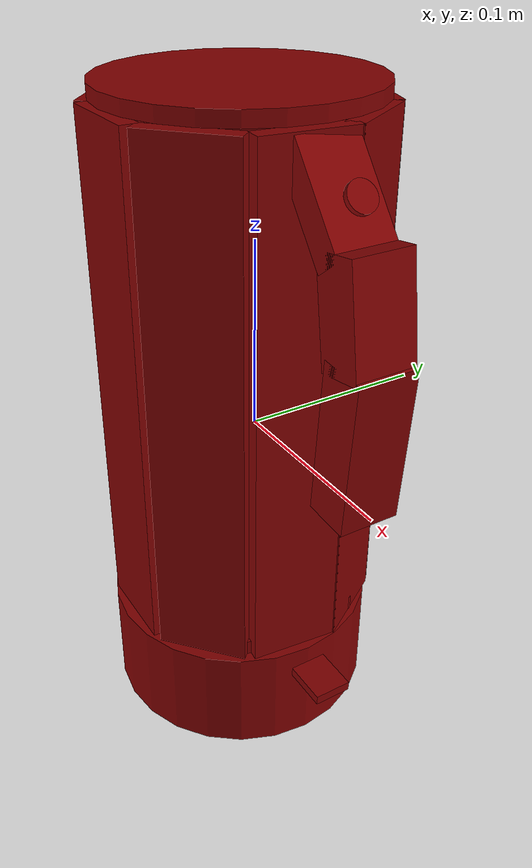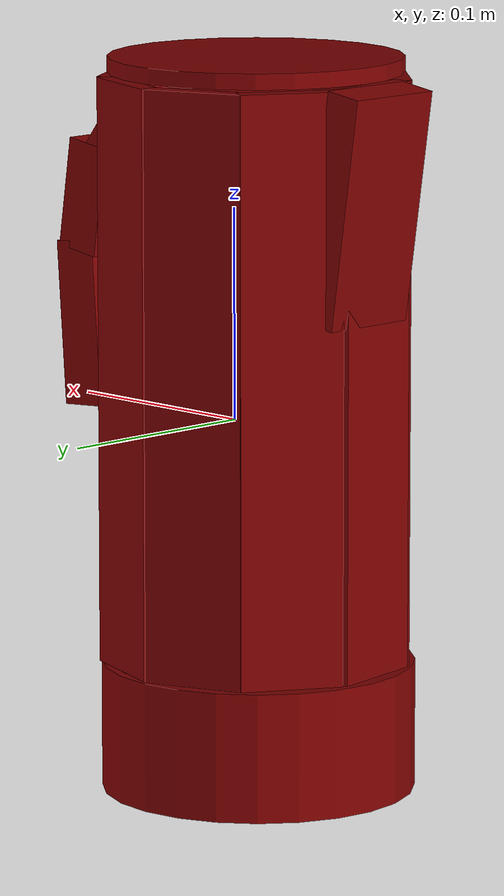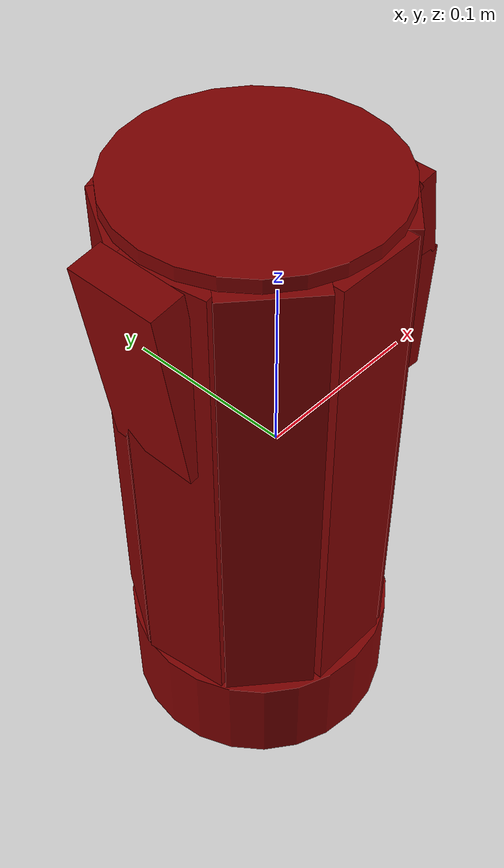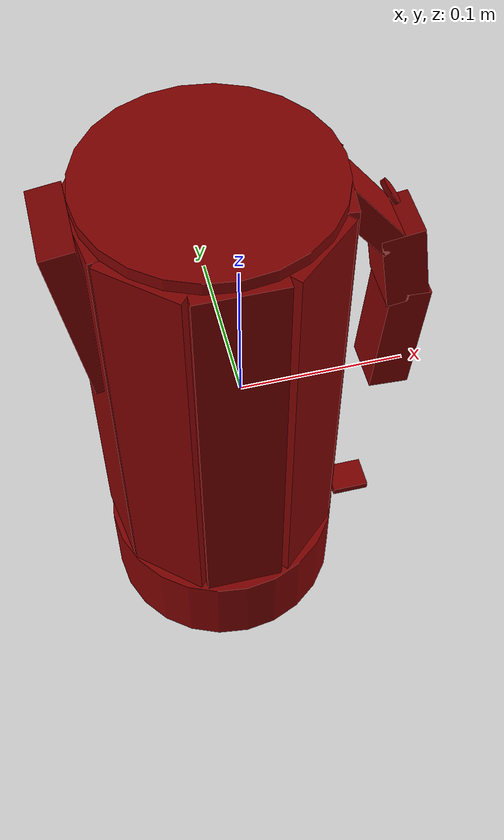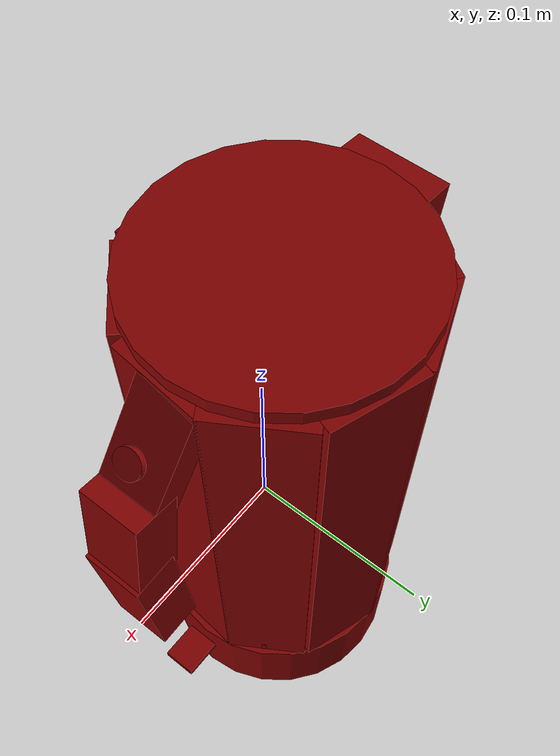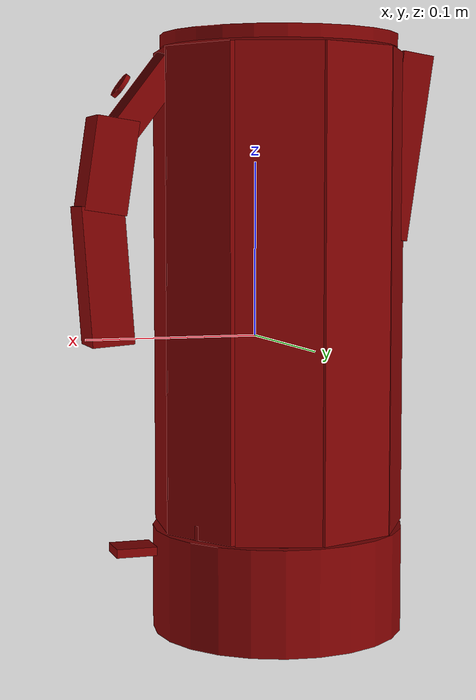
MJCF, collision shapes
<?xml version='1.0' encoding='UTF-8'?>
<mujoco model="model">
  <compiler angle="radian"/>
  <asset>
    <mesh file="visuals/Body001.obj" name="Body001_vis"/>
    <mesh file="visuals/Button001.obj" name="Button001_vis"/>
    <mesh file="visuals/Handle001.obj" name="Handle001_vis"/>
    <mesh file="visuals/Lever001.obj" name="Lever001_vis"/>
    <mesh file="visuals/Lid001.obj" name="Lid001_vis"/>
    <texture file="visuals/T_BC001.png" name="Body001_material" type="2d"/>
    <material name="Body001_material" rgba="1 1 1 1.0" texture="Body001_material" shininess="0.5" specular="0.3103448502657381"/>
    <texture file="visuals/T_BC001.png" name="Handle001_material" type="2d"/>
    <material name="Handle001_material" rgba="1 1 1 1.0" texture="Handle001_material" shininess="0.5" specular="0.3103448502657381"/>
    <texture file="visuals/T_BC001.png" name="Button001_material" type="2d"/>
    <material name="Button001_material" rgba="1 1 1 1.0" texture="Button001_material" shininess="0.5" specular="0.3103448502657381"/>
    <texture file="visuals/T_BC001.png" name="Lid001_material" type="2d"/>
    <material name="Lid001_material" rgba="1 1 1 1.0" texture="Lid001_material" shininess="0.5" specular="0.3103448502657381"/>
    <texture file="visuals/T_BC001.png" name="Lever001_material" type="2d"/>
    <material name="Lever001_material" rgba="1 1 1 1.0" texture="Lever001_material" shininess="0.5" specular="0.3103448502657381"/>
  </asset>
  <default>
    <default class="visual">
      <geom conaffinity="0" contype="0" group="1" type="mesh"/>
    </default>
    <default class="collision">
      <geom group="0" rgba="0.5 0 0 0.5"/>
    </default>
    <default class="spawn">
      <geom group="0" rgba="1 1 1 0.5" contype="0" conaffinity="0"/>
      <site group="0" rgba="1 1 1 0.5"/>
    </default>
    <default class="region">
      <geom group="1" conaffinity="0" contype="0" rgba="0 1 0 0"/>
    </default>
  </default>
  <worldbody>
    <body>
      <body name="object">
        <geom mesh="Body001_vis" type="mesh" solimp="0.998 0.998 0.001" solref="0.001 1" density="100" friction="0.95 0.3 0.1" class="visual" material="Body001_material"/>
        <geom class="collision" type="cylinder" pos="-0.014147056266665459 -0.0014596912078559399 -0.1420055478811264" size="0.07333151251077652 0.030249718576669693" quat="1.0 0.0 0.0 0.0"/>
        <body name="Handle001">
          <joint axis="0.0 0.0 1.0" pos="1.1175870895385742e-08 0.0030100685544312 0.0263005793094635" limited="true" name="Handle001_joint" range="0.0 0.1" type="slide" damping="1" frictionloss="1" armature=".01" stiffness="0.05"/>
          <geom mesh="Handle001_vis" type="mesh" solimp="0.998 0.998 0.001" solref="0.001 1" density="100" friction="0.95 0.3 0.1" class="visual" material="Handle001_material"/>
          <geom class="collision" type="box" pos="-0.014659987762570381 -0.0649634450674057 0.02637583017349243" size="0.023964185267686844 0.004526099190115929 0.13681364059448242" quat="7.549790126404332e-08 0.0 0.0 1.0"/>
          <geom class="collision" type="box" pos="-0.05734682083129883 -0.048654280602931976 0.02637583017349243" size="0.023964185267686844 0.004526099190115929 0.13681364059448242" quat="0.351702481508255 0.0 0.0 0.9361118674278259"/>
          <geom class="collision" type="box" pos="-0.07854617387056351 -0.009625241160392761 0.02637583017349243" size="0.023964187130331993 0.004526099655777216 0.13681364059448242" quat="0.6505151391029358 0.0 0.0 0.7594932913780212"/>
          <geom class="collision" type="box" pos="-0.06978107988834381 0.03379485756158829 0.02637583017349243" size="0.023964185267686844 0.004526099190115929 0.13681364059448242" quat="0.8704730272293091 0.0 0.0 0.4922161400318146"/>
          <geom class="collision" type="box" pos="-0.036906998604536057 0.060903653502464294 0.02637583017349243" size="0.023964183405041695 0.004526098724454641 0.13681364059448242" quat="0.9837532043457031 0.0 0.0 0.17952613532543182"/>
          <geom class="collision" type="box" pos="0.006459015421569347 0.06155899167060852 0.02637583017349243" size="0.023964185267686844 0.004526099190115929 0.13681364059448242" quat="0.9872539043426514 0.0 0.0 -0.1591530293226242"/>
          <geom class="collision" type="box" pos="0.04121389985084534 0.03374524414539337 0.02637583017349243" size="0.023964185267686844 0.004526099190115929 0.13681364059448242" quat="0.8729791641235352 0.0 0.0 -0.48775753378868103"/>
          <geom class="collision" type="box" pos="0.050294194370508194 -0.006938675884157419 0.02637583017349243" size="0.023964185267686844 0.004526099190115929 0.13681364059448242" quat="0.6703444719314575 0.0 0.0 -0.742050051689148"/>
          <geom class="collision" type="box" pos="0.028762949630618095 -0.04864233359694481 0.02637583017349243" size="0.023964185267686844 0.004526099190115929 0.13681364059448242" quat="0.35703277587890625 0.0 0.0 -0.9340918660163879"/>
          <geom class="collision" type="box" pos="0.06422605365514755 -0.00040946900844573975 0.13655079901218414" size="0.026267927139997482 0.015525726601481438 0.007936660200357437" quat="0.8977532386779785 -2.6406252739974434e-09 0.4404987394809723 6.135578711763401e-09"/>
          <geom class="collision" type="box" pos="0.0873926654458046 -0.00040946900844573975 0.09729832410812378" size="0.02626792900264263 0.015525727532804012 0.01201306190341711" quat="0.7575722336769104 0.0 0.6527513861656189 0.0"/>
          <geom class="collision" type="box" pos="0.09007710963487625 -0.00040946900844573975 0.03659379482269287" size="0.03920470178127289 0.015525727532804012 0.012013060972094536" quat="0.6807309985160828 0.0 0.7325335144996643 0.0"/>
          <geom class="collision" type="box" pos="-0.08403682708740234 -0.0013011693954467773 0.10929455608129501" size="0.053924139589071274 0.024153606966137886 0.00934384111315012" quat="0.7575722336769104 0.0 0.6527513861656189 0.0"/>
          <geom class="collision" type="cylinder" pos="-0.013485543429851532 0.00044968375004827976 -0.10658633708953857" size="0.0687592625617981 0.00413012970238924" quat="1.0 0.0 0.0 0.0"/>
          <body name="Button001">
            <joint axis="-0.8191520571708679 0.0 -0.5735763907432556" pos="0.07819374650716782 0.002444388810545206 0.14140471816062927" limited="true" name="Button001_joint" range="0.0 0.0015" type="slide" damping="1" frictionloss="1" armature=".01" stiffness="0.05" springref="-0.8"/>
            <geom mesh="Button001_vis" type="mesh" solimp="0.998 0.998 0.001" solref="0.001 1" density="100" friction="0.95 0.3 0.1" class="visual" material="Button001_material"/>
            <geom class="collision" type="cylinder" pos="0.07893180102109909 -0.0005655116401612759 0.1419215202331543" size="0.007331433705985546 0.0012985486537218094" quat="0.8870108723640442 5.408680603814341e-15 0.46174854040145874 6.20400086859263e-08"/>
          </body>
          <body name="Lid001">
            <joint axis="0.0 1.0 0.0" pos="0.053192514926195145 0.003309068037196994 0.16428445279598236" limited="true" name="Lid001_joint" range="0.0 1.5707963267948966" type="hinge" damping="1" frictionloss="1" armature=".01" stiffness="0.05"/>
            <geom mesh="Lid001_vis" type="mesh" solimp="0.998 0.998 0.001" solref="0.001 1" density="100" friction="0.95 0.3 0.1" class="visual" material="Lid001_material"/>
            <geom class="collision" type="cylinder" pos="-0.014223458245396614 0.0002246946096420288 0.16849210858345032" size="0.06849019229412079 0.003672220977023244" quat="1.0 0.0 0.0 0.0"/>
          </body>
        </body>
        <body name="Lever001">
          <joint axis="0.0 0.0 -1.0" pos="0.06762874871492386 -0.00011673750850604847 -0.12179967015981674" limited="true" name="Lever001_joint" range="0.0 0.005" type="slide" damping="1" frictionloss="1" armature=".01" stiffness="1" springref="-0.4"/>
          <geom mesh="Lever001_vis" type="mesh" solimp="0.998 0.998 0.001" solref="0.001 1" density="100" friction="0.95 0.3 0.1" class="visual" material="Lever001_material"/>
          <geom class="collision" type="box" pos="0.07290944457054138 -0.0031266361474990845 -0.12179967015981674" size="0.011787566356360912 0.010041411966085434 0.002512487815693021" quat="1.0 0.0 0.0 0.0"/>
        </body>
        <geom class="region" name="reg_main" type="box" pos="0.0 0.0 0.0" size="0.10209974646568298 0.07876776903867722 0.17143425345420837"/>
      </body>
    </body>
  </worldbody>
  <actuator>
    <motor name="Handle001_joint_actuator" joint="Handle001_joint" gear="10"/>
    <motor name="Lever001_joint_actuator" joint="Lever001_joint" gear="10"/>
    <motor name="Button001_joint_actuator" joint="Button001_joint" gear="0.5"/>
    <motor name="Lid001_joint_actuator" joint="Lid001_joint" gear="0.5"/>
  </actuator>
</mujoco>
